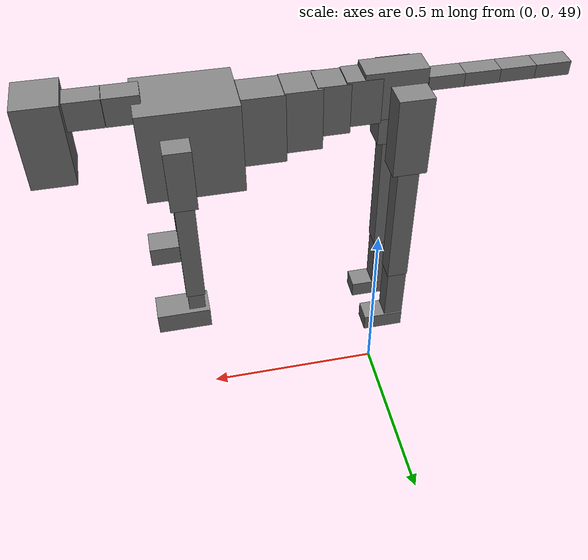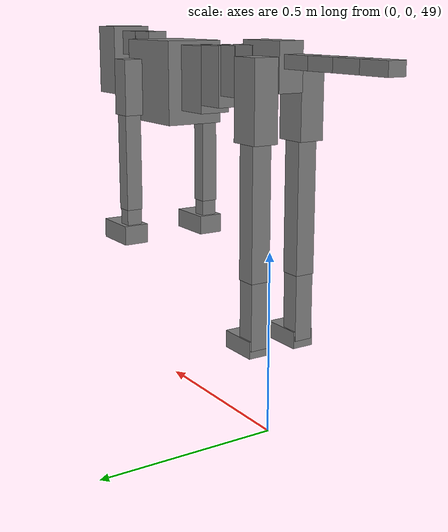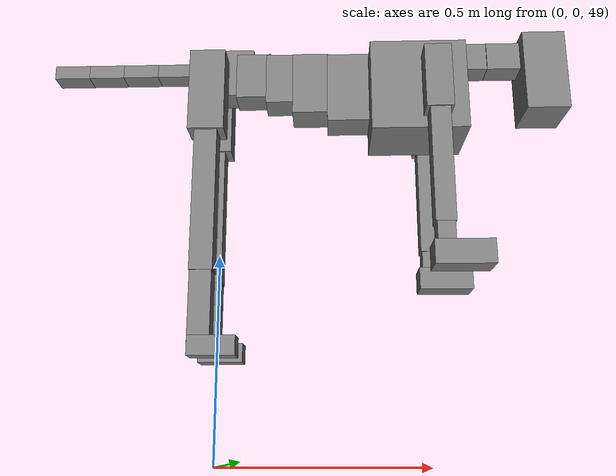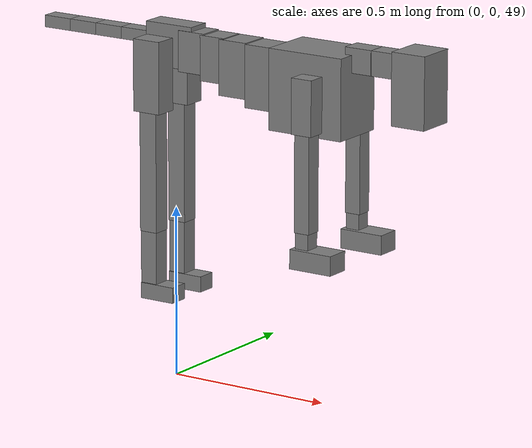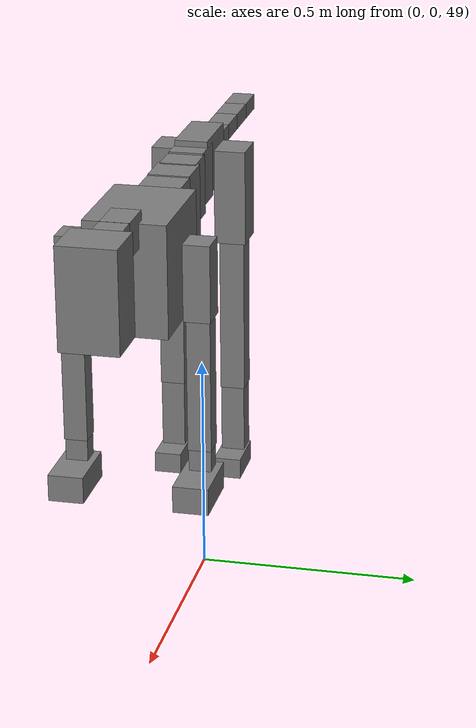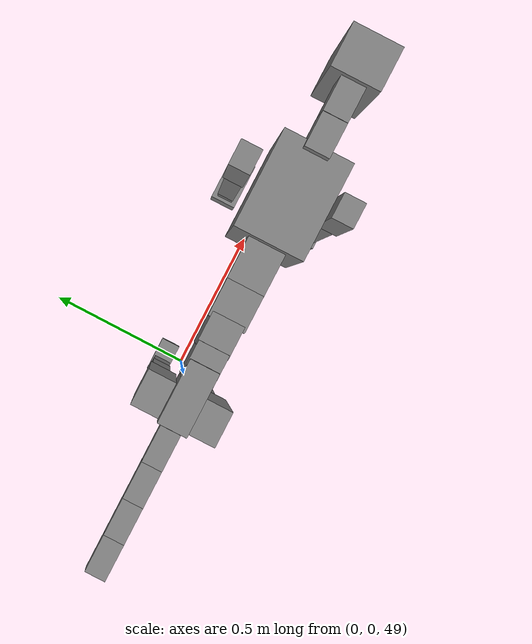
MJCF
<mujoco model="dog">

    <default>
        <joint armature="0.02" stiffness="1" damping="0.2" limited="true"/>
        <geom condim="3" friction="1 0.05 0.05" margin="0.01"/>
        <motor ctrllimited="true" ctrlrange="-1.0 1.0" forcelimited="true" gear="50"/>
    </default>

    <compiler inertiafromgeom="true" angle="radian"/>

    <option timestep="0.016" iterations="50" tolerance="1e-10" solver="Newton" jacobian="dense" cone="pyramidal"/>

    <size nconmax="20000" njmax="60000" nstack="5000000"/>
    <visual>
        <map force="0.1" zfar="30"/>
        <rgba haze="0.15 0.25 0.35 1"/>
        <quality shadowsize="2048"/>
        <global offwidth="800" offheight="800"/>
    </visual>

    <asset>
        <texture type="skybox" builtin="gradient" rgb1="0.3 0.5 0.7" rgb2="0 0 0" width="512" height="512"/>
        <texture name="texplane" type="2d" builtin="checker" rgb1=".2 .3 .4" rgb2=".1 0.15 0.2" width="512" height="512"
                 mark="cross" markrgb=".8 .8 .8"/>
        <texture name="texgeom" type="cube" builtin="flat" mark="cross" width="127" height="1278" rgb1="0.8 0.6 0.4"
                 rgb2="0.8 0.6 0.4" markrgb="1 1 1" random="0.01"/>

        <material name="matplane" reflectance="0.3" texture="texplane" texrepeat="1 1" texuniform="true"/>
        <material name="matgeom" texture="texgeom" texuniform="true" rgba="0.8 0.6 .4 1"/>
    </asset>

    <worldbody>
        <geom name="floor" pos="0 0 0" size="0 0 .25" type="plane" material="matplane" condim="3"/>

        <light directional="false" diffuse=".2 .2 .2" specular="0 0 0" pos="0 0 5" dir="0 0 -1" castshadow="false"/>
        <light mode="targetbodycom" target="torso" directional="false" diffuse=".8 .8 .8" specular="0.3 0.3 0.3"
               pos="0 0 4.0" dir="0 0 -1"/>

        <body name="root" pos="0 0 50">
            <freejoint name="root_1"/>
            <geom type="box" pos="0 0 -0.02" size="0.0774  0.0358  0.063" density="2030"/>

            <body name="spine1" pos="0.054 0 0">
                <joint name="spine1_y" axis="0 1 0" range="0 0.7" limited="true"/>
                <geom type="box" pos="0.02375 0 -0.03" size="0.04375  0.0375  0.05985" density="2030"/>

                <body name="spine2" pos="0.0612 0 0">
                    <joint name="spine2_y" axis="0 1 0" range="-0.15 0.15" limited="true"/>
                    <geom type="box" pos="0.03555  0  -0.04" size="0.04055  0.039  0.06615" density="2030"/>

                    <body name="spine3" pos="0.0730 0 0">
                        <joint name="spine3_y" axis="0 1 0" range="-0.15 0.15" limited="true"/>
                        <geom type="box" pos="0.03555  0  -0.057" size="0.04555  0.0445  0.081" density="2030"/>

                        <body name="spine4" pos="0.0780 0 0">
                            <joint name="spine4_y" axis="0 1 0" range="-0.15 0.15" limited="true"/>
                            <geom type="box" pos="0.05265  0  -0.07" size="0.05265  0.045  0.09135" density="2030"/>

                            <body name="torso" pos="0.1082 0 0">
                                <joint name="torso_y" axis="0 1 0" range="-0.15 0.15" limited="true"/>
                                <geom type="box" pos="0.11925  0  -0.085" size="0.11925  0.085  0.11745"
                                      density="2030"/>

                                <body name="neck1" pos="0.2160  0   0.0180">
                                    <joint name="neck1_y" axis="0 1 0" range="-1.2  -1" limited="true"/>
                                    <geom type="box" pos="0.0423  0  0" size="0.0423  0.03  0.036" density="2325"/>

                                    <body name="neck2" pos="0.0853  0  0">
                                        <joint name="neck2_y" axis="0 1 0" range="0.1  0" limited="true"/>
                                        <geom type="box" pos="0.0423  0  0" size="0.0423  0.03  0.036" density="2325"/>

                                        <body name="head" pos="0.0853  0  0">
                                            <joint name="head_y" axis="0 1 0" range="-0.3  -0.2" limited="true"/>
                                            <geom type="box" pos="0.0531  0  -0.055" size="0.0531  0.06  0.1044"
                                                  density="4030"/>

                                        </body>
                                    </body>
                                </body>

                                <body name="front_shoulder" pos="0.156  0   -0.0480">
                                    <joint name="front_shoulder_y" axis="0 1 0" range="-1 1.5" limited="true"/>
                                    <geom type="box" pos="0 0.13 -0.0536" size="0.0323  0.0276  0.0802" density="1158"/>
                                    <geom type="box" pos="0 -0.13 -0.0536" size="0.0323  0.0276  0.0802"
                                          density="1158"/>

                                    <body name="front_elbow" pos="0  0  -0.1072">
                                        <joint name="front_elbow_y" axis="0 1 0" range="-2 0" limited="true"/>
                                        <geom type="box" pos="0 0.13 -0.1535" size="0.0238  0.0243  0.1535"
                                              density="1081"/>
                                        <geom type="box" pos="0 -0.13 -0.1535" size="0.0238  0.0243  0.1535"
                                              density="1081"/>

                                        <body name="front_wrist" pos="0  0  -0.3070">
                                            <joint name="front_wrist_y" axis="0 1 0" range="-0.2 0" limited="true"/>
                                            <geom type="box" pos="0 0.13 -0.0305" size="0.0207  0.0231  0.0436"
                                                  density="1664"/>
                                            <geom type="box" pos="0 -0.13 -0.0305" size="0.0207  0.0231  0.0436"
                                                  density="1664"/>

                                            <body name="front_finger_end" pos="0  0  -0.0609">
                                                <joint name="front_finger_y" axis="0 1 0" range="-0.4 1"
                                                       limited="true"/>
                                                <geom type="box" pos="0.0369  0.13  -0.0133"
                                                      size="0.0677  0.0369  0.0283" density="1515"/>
                                                <geom type="box" pos="0.0369  -0.13  -0.0133"
                                                      size="0.0677  0.0369  0.0283" density="1515"/>

                                            </body>

                                        </body>
                                    </body>
                                </body>

                            </body>
                        </body>
                    </body>
                </body>
            </body>

            <body name="back_hip" pos="-0.03 0 -0.018">
                <joint name="back_hip_y" axis="0 1 0" range="-1.5 0.3" limited="true"/>
                <geom type="box" pos="0 0.07 -0.0825" size="0.0440  0.0345  0.1053" density="1154"/>
                <geom type="box" pos="0 -0.07 -0.0825" size="0.0440  0.0345  0.1053" density="1154"/>

                <body name="back_knee" pos="0  0  -0.1650">
                    <joint name="back_knee_y" axis="0 1 0" range="0 2.8" limited="true"/>
                    <geom type="box" pos="0 0.07 -0.1790" size="0.0277  0.0273  0.1945" density="1227"/>
                    <geom type="box" pos="0 -0.07 -0.1790" size="0.0277  0.0273  0.1945" density="1227"/>

                    <body name="back_ankle" pos="0  0  -0.3580">
                        <joint name="back_ankle_y" axis="0 1 0" range="-2.2 0" limited="true"/>
                        <geom type="box" pos="0 0.07 -0.0914" size="0.0260  0.0260  0.1027" density="1284"/>
                        <geom type="box" pos="0 -0.07 -0.0914" size="0.0260  0.0260  0.1027" density="1284"/>

                        <body name="back_toe_end" pos="0  0  -0.1828">
                            <joint name="back_toe_y" axis="0 1 0" range="-0.4 1" limited="true"/>
                            <geom type="box" pos="0.0301  0.07  -0.0080" size="0.0551  0.0301  0.0230" density="1515"/>
                            <geom type="box" pos="0.0301  -0.07  -0.0080" size="0.0551  0.0301  0.0230" density="1515"/>

                        </body>
                    </body>
                </body>
            </body>

            <body name="tail1" pos="-0.074 0 -0.006">
                <joint name="tail1_y" axis="0 1 0" range="-0.2 0.2" limited="true"/>
                <geom type="box" pos="-0.0536  0  0" size="0.045  0.025  0.0175" density="1587"/>

                <body name="tail2" pos="-0.09 0 0">
                    <joint name="tail2_y" axis="0 1 0" range="-0.2 0.2" limited="true"/>
                    <geom type="box" pos="-0.0536  0  0" size="0.045  0.025  0.0175" density="1587"/>

                    <body name="tail3" pos="-0.09 0 0">
                        <joint name="tail3_y" axis="0 1 0" range="-0.2 0.2" limited="true"/>
                        <geom type="box" pos="-0.0536  0  0" size="0.045  0.025  0.0175" density="1587"/>

                        <body name="tail4" pos="-0.09 0 0">
                            <joint name="tail4_y" axis="0 1 0" range="-0.2 0.2" limited="true"/>
                            <geom type="box" pos="-0.0536  0  0" size="0.045  0.025  0.0175" density="1587"/>

                        </body>
                    </body>
                </body>
            </body>
        </body>
    </worldbody>

    <actuator>
        <motor joint="spine1_y" forcerange="-150 150     "/>
        <motor joint="spine2_y" forcerange="-150 150     "/>
        <motor joint="spine3_y" forcerange="-150 150     "/>
        <motor joint="spine4_y" forcerange="-150 150     "/>
        <motor joint="torso_y" forcerange="-150 150     "/>
        <motor joint="neck1_y" forcerange="-100 100       "/>
        <motor joint="neck2_y" forcerange="-100 100       "/>
        <motor joint="head_y" forcerange="-150 150       "/>
        <motor joint="front_shoulder_y" forcerange="-147.01 137.04"/>
        <motor joint="front_elbow_y" forcerange="-143.78 133.15"/>
        <motor joint="front_wrist_y" forcerange="-114.23 70.19"/>
        <motor joint="front_finger_y" forcerange="-90.19 66.85"/>
        <motor joint="back_hip_y" forcerange="-399.29 260.84"/>
        <motor joint="back_knee_y" forcerange="-305.01 291.86"/>
        <motor joint="back_angle_y" forcerange="-212.57 103.67"/>
        <motor joint="back_toe_y" forcerange="-48.42 112.08"/>
        <motor joint="tail1_y" forcerange="-50 50     "/>
        <motor joint="tail2_y" forcerange="-50 50     "/>
        <motor joint="tail3_y" forcerange="-50 50     "/>
        <motor joint="tail4_y" forcerange="-50 50     "/>
    </actuator>
</mujoco>
